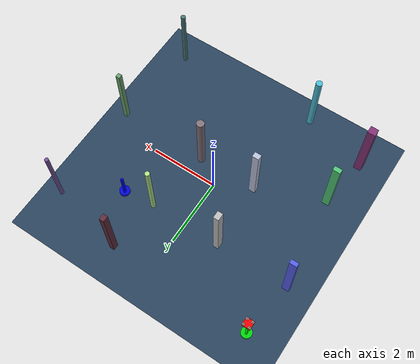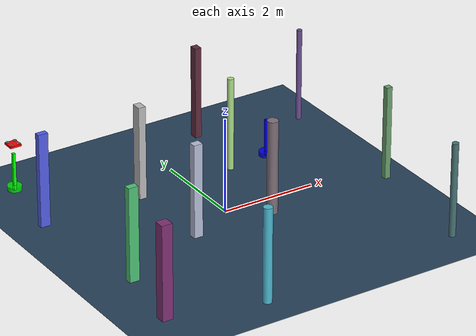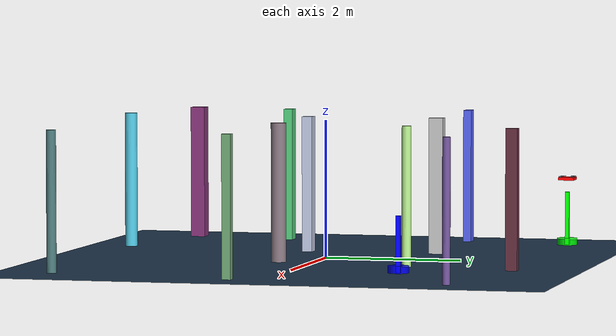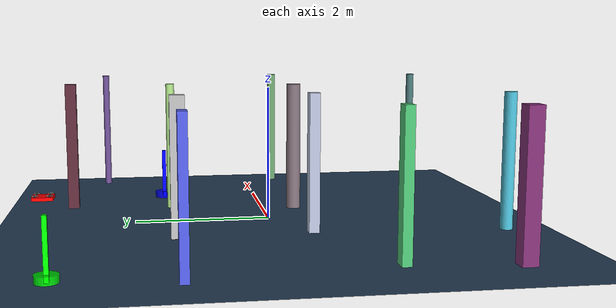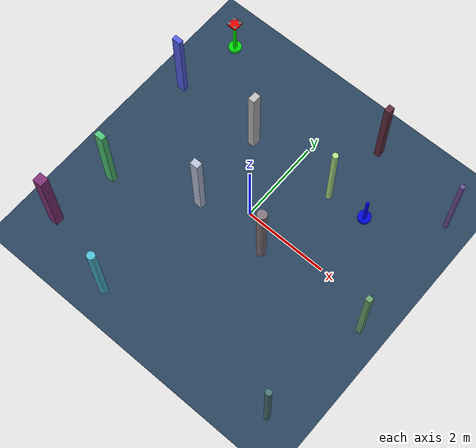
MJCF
<mujoco model="complex_uav_env">
  <compiler angle="degree" coordinate="local" inertiafromgeom="true"/>
  <option integrator="RK4" timestep="0.01"/>

  <visual>
    <headlight diffuse="0.6 0.6 0.6" ambient="0.3 0.3 0.3"/>
    <rgba haze="0.15 0.25 0.35 1"/>
    <global offwidth="2560" offheight="1440"/>
  </visual>

  <asset>
    <texture type="skybox" builtin="gradient" rgb1="0.3 0.5 0.7" rgb2="0 0 0" width="512" height="3072"/>
    <texture name="grid" type="2d" builtin="checker" rgb1="0.1 0.2 0.3" rgb2="0.2 0.3 0.4" width="512" height="512"/>
    <material name="grid" texture="grid" texrepeat="1 1" reflectance="0.2"/>
  </asset>

  <worldbody>
    <!-- Ground plane -->
    <geom name="ground" type="plane" size="4.0 4.0 0.1" material="grid"/>
    <light name="light1" pos="0 0 4" dir="0 0 -1" diffuse="1 1 1"/>

    <!-- Start position marker (green) -->
    <geom name="start_marker" type="cylinder" size="0.15 0.05" pos="-3.0 3.0 0.05" rgba="0 1 0 0.8"/>
    <geom name="start_pole" type="box" size="0.03 0.03 0.4" pos="-3.0 3.0 0.4" rgba="0 1 0 1"/>

    <!-- Goal position marker (blue) -->
    <geom name="goal_marker" type="cylinder" size="0.15 0.05" pos="1.9585888807333918 1.536788760626549 0.05" rgba="0 0 1 0.8"/>
    <geom name="goal_pole" type="box" size="0.03 0.03 0.4" pos="1.9585888807333918 1.536788760626549 0.4" rgba="0 0 1 1"/>

    <!-- UAV starting position -->
    <body name="chassis" pos="-3.0 3.0 1.0">
      <joint type="free" name="root"/>
      <geom type="box" size="0.12 0.12 0.02" rgba="1.0 0.0 0.0 1.0" mass="0.8"/>

      <!-- Propeller arms and motors -->
      <geom type="box" size="0.08 0.01 0.005" pos="0 0 0.01" rgba="0.3 0.3 0.3 1"/>
      <geom type="box" size="0.01 0.08 0.005" pos="0 0 0.01" rgba="0.3 0.3 0.3 1"/>

      <!-- Motor visual geometry -->
      <geom type="cylinder" size="0.015 0.02" pos="0.08 0.08 0.015" rgba="0.2 0.2 0.2 1"/>
      <geom type="cylinder" size="0.015 0.02" pos="-0.08 0.08 0.015" rgba="0.2 0.2 0.2 1"/>
      <geom type="cylinder" size="0.015 0.02" pos="0.08 -0.08 0.015" rgba="0.2 0.2 0.2 1"/>
      <geom type="cylinder" size="0.015 0.02" pos="-0.08 -0.08 0.015" rgba="0.2 0.2 0.2 1"/>

      <!-- Propellers -->
      <geom type="cylinder" size="0.04 0.002" pos="0.08 0.08 0.035" rgba="0.7 0.7 0.7 0.8"/>
      <geom type="cylinder" size="0.04 0.002" pos="-0.08 0.08 0.035" rgba="0.7 0.7 0.7 0.8"/>
      <geom type="cylinder" size="0.04 0.002" pos="0.08 -0.08 0.035" rgba="0.7 0.7 0.7 0.8"/>
      <geom type="cylinder" size="0.04 0.002" pos="-0.08 -0.08 0.035" rgba="0.7 0.7 0.7 0.8"/>

      <!-- Sites for motor force application -->
      <site name="motor1" pos="0.08 0.08 0" size="0.01"/>
      <site name="motor2" pos="-0.08 0.08 0" size="0.01"/>
      <site name="motor3" pos="0.08 -0.08 0" size="0.01"/>
      <site name="motor4" pos="-0.08 -0.08 0" size="0.01"/>
    </body>
    <geom name="test_obs_0" type="box" size="0.11253956602772035 0.10748226259677884 1.0" pos="-3.1153298061863133 -2.804438145880197 1.0" rgba="0.4955089403363073 0.1853329329552425 0.4471599963928756 1.0"/>
    <geom name="test_obs_1" type="box" size="0.09525881053186708 0.07609922033596832 1.0" pos="-0.9856646229628734 -0.5154594778094802 1.0" rgba="0.7090015929287321 0.7407955481125751 0.8412751988724189 1.0"/>
    <geom name="test_obs_2" type="cylinder" size="0.06854214662539197 1.0" pos="3.137819762629776 -3.1528837118550297 1.0" rgba="0.2808771444579861 0.45210193601166826 0.4542275486514584 1.0"/>
    <geom name="test_obs_3" type="cylinder" size="0.11049238374865947 1.0" pos="0.7532104179927491 -0.5097675080655453 1.0" rgba="0.49908623376043937 0.43682105803238835 0.4704760400055088 1.0"/>
    <geom name="test_obs_4" type="cylinder" size="0.06681939563464262 1.0" pos="1.048275673760266 1.4424890527455143 1.0" rgba="0.673430799159905 0.8727427875238839 0.5255555298274671 1.0"/>
    <geom name="test_obs_5" type="box" size="0.10463289036191359 0.05890868855549587 1.0" pos="-3.23155375488896 1.4239496564909864 1.0" rgba="0.31909168031836443 0.3654449357415943 0.8941112862261652 1.0"/>
    <geom name="test_obs_6" type="cylinder" size="0.09182139943928516 1.0" pos="-1.214137371567504 -3.325973584646254 1.0" rgba="0.2922796986018157 0.7274049374523995 0.8219465434773446 1.0"/>
    <geom name="test_obs_7" type="box" size="0.10542366722767996 0.06699488692187788 1.0" pos="-2.891683259141923 -1.3071920168546742 1.0" rgba="0.29966038253092125 0.7538015184345713 0.4533898563325528 1.0"/>
    <geom name="test_obs_8" type="box" size="0.06969665255819721 0.084041745867284 1.0" pos="1.2285037688313185 3.003954527340025 1.0" rgba="0.3650203942915473 0.16810125709770113 0.23029527151474546 1.0"/>
    <geom name="test_obs_9" type="box" size="0.07674662529691575 0.10529775551930098 1.0" pos="-1.0721508023439923 1.4082855542843298 1.0" rgba="0.7271994140853772 0.7223472296398551 0.7259734908990882 1.0"/>
    <geom name="test_obs_10" type="cylinder" size="0.05513530085014401 1.0" pos="3.4134566934708324 2.5400441053665164 1.0" rgba="0.41990137995785193 0.3069136062361902 0.5727061058201488 1.0"/>
    <geom name="test_obs_11" type="box" size="0.06080608456392866 0.06232105419032739 1.0" pos="3.4405468453645556 -0.5255750308181804 1.0" rgba="0.40674144846158666 0.6164490018371088 0.41992035504050096 1.0"/>
  </worldbody>

  <actuator>
    <motor name="m1" gear="0 0 1 0 0 0" site="motor1"/>
    <motor name="m2" gear="0 0 1 0 0 0" site="motor2"/>
    <motor name="m3" gear="0 0 1 0 0 0" site="motor3"/>
    <motor name="m4" gear="0 0 1 0 0 0" site="motor4"/>
  </actuator>
</mujoco>
